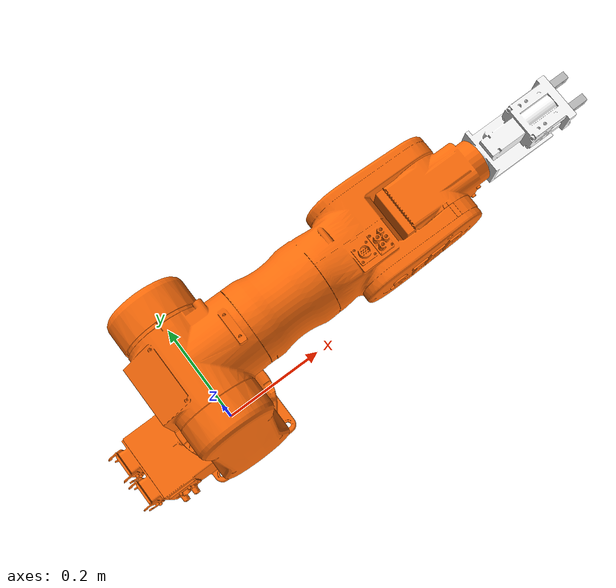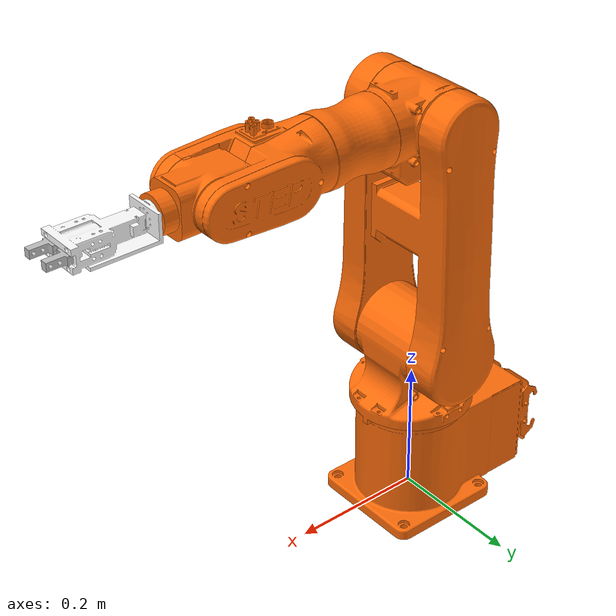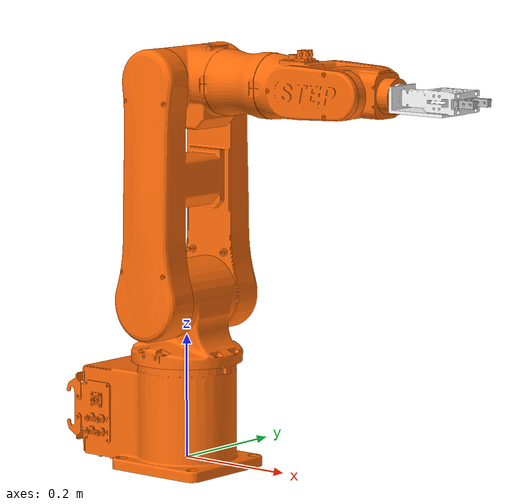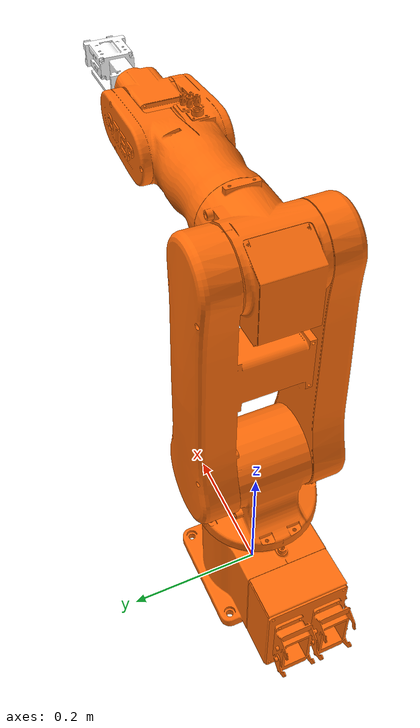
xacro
<robot
  name="sd700e_grip" xmlns:xacro="http://ros.org/wiki/xacro">

  <link name="base_footprint"/>
  <joint name="base_footprint_to_base" type="fixed">
    <axis rpy="0 0 0" xyz="0 0 0"/>
    <parent link="base_footprint"/>
    <child link="base_link"/>
    <origin rpy="0 0 0" xyz="0 0 0"/>
  </joint>

  <link
    name="base_link">
    <inertial>
      <origin
        xyz="-0.0194690222590367 0.0669003838868867 0.00026918811932978"
        rpy="0 0 0" />
      <mass
        value="0.001" />
      <inertia
        ixx="10"
        ixy="0"
        ixz="0"
        iyy="10"
        iyz="0"
        izz="10" />
    </inertial>
    <visual>
      <origin
        xyz="0 0 0"
        rpy="0 0 0" />
      <geometry>
        <mesh
          filename="package://sd700e_grip/meshes/base_link.STL" />
      </geometry>
      <material
        name="">
        <color
          rgba="1.0 0.42353 0.03921 1.0" />
      </material>
    </visual>
    <collision>
      <origin
        xyz="0 0 0"
        rpy="0 0 0" />
      <geometry>
        <mesh
          filename="package://sd700e_grip/meshes/base_link.STL" />
      </geometry>
    </collision>
  </link>
  <link
    name="Link1">
    <inertial>
      <origin
        xyz="6.24979525564542E-05 -0.0250389972697368 -3.54756695346475E-05"
        rpy="0 0 0" />
      <mass
        value="0.00001" />
      <inertia
        ixx="10"
        ixy="0"
        ixz="0"
        iyy="10"
        iyz="0"
        izz="10" />
    </inertial>
    <visual>
      <origin
        xyz="0 0 0"
        rpy="0 0 0" />
      <geometry>
        <mesh
          filename="package://sd700e_grip/meshes/Link1.STL" />
      </geometry>
      <material
        name="">
        <color
          rgba="1.0 0.42353 0.03921 1.0" />
      </material>
    </visual>
    <collision>
      <origin
        xyz="0 0 0"
        rpy="0 0 0" />
      <geometry>
        <mesh
          filename="package://sd700e_grip/meshes/Link1.STL" />
      </geometry>
    </collision>
  </link>
  <joint
    name="Joint1"
    type="revolute">
    <origin
      xyz="0 0 0.263"
      rpy="1.5708 0 0" />
    <parent
      link="base_link" />
    <child
      link="Link1" />
    <axis
      xyz="0 1 0" />
    <limit
      lower="-2.967"
      upper="2.967"
      effort="100"
      velocity="1" />
  </joint>
  <link
    name="Link2">
    <inertial>
      <origin
        xyz="3.89335646288233E-06 0.14379865823793 -0.0506443388040001"
        rpy="0 0 0" />
      <mass
        value="0.00001" />
      <inertia
        ixx="10"
        ixy="0"
        ixz="0"
        iyy="10"
        iyz="0"
        izz="10" />
    </inertial>
    <visual>
      <origin
        xyz="0 0 0"
        rpy="0 0 0" />
      <geometry>
        <mesh
          filename="package://sd700e_grip/meshes/Link2.STL" />
      </geometry>
      <material
        name="">
        <color
          rgba="1.0 0.42353 0.03921 1.0" />
      </material>
    </visual>
    <collision>
      <origin
        xyz="0 0 0"
        rpy="0 0 0" />
      <geometry>
        <mesh
          filename="package://sd700e_grip/meshes/Link2.STL" />
      </geometry>
    </collision>
  </link>
  <joint
    name="Joint2"
    type="revolute">
    <origin
      xyz="0 0 0"
      rpy="0 0 0" />
    <parent
      link="Link1" />
    <child
      link="Link2" />
    <axis
      xyz="0 0 1" />
    <limit
      lower="-1.9199"
      upper="1.9199"
      effort="100"
      velocity="1" />
  </joint>
  <link
    name="Link3">
    <inertial>
      <origin
        xyz="0.013415824980232 -0.0105511175519905 0.00078367779449206"
        rpy="0 0 0" />
      <mass
        value="0.00001" />
      <inertia
        ixx="10"
        ixy="0"
        ixz="0"
        iyy="10"
        iyz="0"
        izz="10" />
    </inertial>
    <visual>
      <origin
        xyz="0 0 0"
        rpy="0 0 0" />
      <geometry>
        <mesh
          filename="package://sd700e_grip/meshes/Link3.STL" />
      </geometry>
      <material
        name="">
        <color
          rgba="1.0 0.42353 0.03921 1.0" />
      </material>
    </visual>
    <collision>
      <origin
        xyz="0 0 0"
        rpy="0 0 0" />
      <geometry>
        <mesh
          filename="package://sd700e_grip/meshes/Link3.STL" />
      </geometry>
    </collision>
  </link>
  <joint
    name="Joint3"
    type="revolute">
    <origin
      xyz="0 0.35 0"
      rpy="0 0 0" />
    <parent
      link="Link2" />
    <child
      link="Link3" />
    <axis
      xyz="0 0 1" />
    <limit
      lower="-0.6981"
      upper="3.8397"
      effort="100"
      velocity="1" />
  </joint>
  <link
    name="Link4">
    <inertial>
      <origin
        xyz="0.124377414524302 0.000531054308674062 0.00764519285380822"
        rpy="0 0 0" />
      <mass
        value="0.00001" />
      <inertia
        ixx="10"
        ixy="0"
        ixz="0"
        iyy="10"
        iyz="0"
        izz="10" />
    </inertial>
    <visual>
      <origin
        xyz="0 0 0"
        rpy="0 0 0" />
      <geometry>
        <mesh
          filename="package://sd700e_grip/meshes/Link4.STL" />
      </geometry>
      <material
        name="">
        <color
          rgba="1.0 0.42353 0.03921 1.0" />
      </material>
    </visual>
    <collision>
      <origin
        xyz="0 0 0"
        rpy="0 0 0" />
      <geometry>
        <mesh
          filename="package://sd700e_grip/meshes/Link4.STL" />
      </geometry>
    </collision>
  </link>
  <joint
    name="Joint4"
    type="revolute">
    <origin
      xyz="0.0805 0 0"
      rpy="0 0 0" />
    <parent
      link="Link3" />
    <child
      link="Link4" />
    <axis
      xyz="1 0 0" />
    <limit
      lower="-3.1416"
      upper="3.1416"
      effort="100"
      velocity="1" />
  </joint>
  <link
    name="Link5">
    <inertial>
      <origin
        xyz="0.0171365648416463 5.00386109847373E-06 0.00579159804548859"
        rpy="0 0 0" />
      <mass
        value="0.00001" />
      <inertia
        ixx="10"
        ixy="0"
        ixz="0"
        iyy="10"
        iyz="0"
        izz="10" />
    </inertial>
    <visual>
      <origin
        xyz="0 0 0"
        rpy="0 0 0" />
      <geometry>
        <mesh
          filename="package://sd700e_grip/meshes/Link5.STL" />
      </geometry>
      <material
        name="">
        <color
          rgba="1.0 0.42353 0.03921 1.0" />
      </material>
    </visual>
    <collision>
      <origin
        xyz="0 0 0"
        rpy="0 0 0" />
      <geometry>
        <mesh
          filename="package://sd700e_grip/meshes/Link5.STL" />
      </geometry>
    </collision>
  </link>
  <joint
    name="Joint5"
    type="revolute">
    <origin
      xyz="0.2695 0 0"
      rpy="0 0 0" />
    <parent
      link="Link4" />
    <child
      link="Link5" />
    <axis
      xyz="0 0 1" />
    <limit
      lower="-2.1817"
      upper="2.1817"
      effort="100"
      velocity="1" />
  </joint>
  <link
    name="Link6">
    <inertial>
      <origin
        xyz="0.0688522601103922 -0.00341730826575071 -8.58713696627559E-05"
        rpy="0 0 0" />
      <mass
        value="0.00001" />
      <inertia
        ixx="10"
        ixy="0"
        ixz="0"
        iyy="10"
        iyz="0"
        izz="10" />
    </inertial>
    <visual>
      <origin
        xyz="0 0 0"
        rpy="0 0 0" />
      <geometry>
        <mesh
          filename="package://sd700e_grip/meshes/Link6.STL" />
      </geometry>
      <material
        name="">
        <color
          rgba="1 1 1 1" />
      </material>
    </visual>
    <collision>
      <origin
        xyz="0 0 0"
        rpy="0 0 0" />
      <geometry>
        <mesh
          filename="package://sd700e_grip/meshes/Link6.STL" />
      </geometry>
    </collision>
  </link>
  <joint
    name="Joint6"
    type="revolute">
    <origin
      xyz="0.0745 0 0"
      rpy="0 0 0" />
    <parent
      link="Link5" />
    <child
      link="Link6" />
    <axis
      xyz="1 0 0" />
    <limit
      lower="-3.1416"
      upper="3.1416"
      effort="100"
      velocity="1" />
  </joint>
  <link
    name="left_grip">
    <inertial>
      <origin
        xyz="0.0141086137554788 0 0.0169130859525959"
        rpy="0 0 0" />
      <mass
        value="0.00001" />
      <inertia
        ixx="10"
        ixy="0"
        ixz="0"
        iyy="10"
        iyz="0"
        izz="10" />
    </inertial>
    <visual>
      <origin
        xyz="0 0 0"
        rpy="0 0 0" />
      <geometry>
        <mesh
          filename="package://sd700e_grip/meshes/left_grip.STL" />
      </geometry>
      <material
        name="">
        <color
          rgba="0.749019607843137 0.749019607843137 0.749019607843137 1" />
      </material>
    </visual>
    <collision>
      <origin
        xyz="0 0 0"
        rpy="0 0 0" />
      <geometry>
        <mesh
          filename="package://sd700e_grip/meshes/left_grip.STL" />
      </geometry>
    </collision>
  </link>
  <joint
    name="leftjoint"
    type="prismatic">
    <origin
      xyz="0.1228 0 0"
      rpy="0 0 0" />
    <parent
      link="Link6" />
    <child
      link="left_grip" />
    <axis
      xyz="0 0 1" />
    <limit
      lower="-0.0035"
      upper="0.0035"
      effort="100"
      velocity="1" />
  </joint>
  <link
    name="right_grip">
    <inertial>
      <origin
        xyz="0.0141086137554787 7.7715611723761E-16 -0.016913085952596"
        rpy="0 0 0" />
      <mass
        value="0.00001" />
      <inertia
        ixx="10"
        ixy="0"
        ixz="0"
        iyy="10"
        iyz="0"
        izz="10" />
    </inertial>
    <visual>
      <origin
        xyz="0 0 0"
        rpy="0 0 0" />
      <geometry>
        <mesh
          filename="package://sd700e_grip/meshes/right_grip.STL" />
      </geometry>
      <material
        name="">
        <color
          rgba="0.749019607843137 0.749019607843137 0.749019607843137 1" />
      </material>
    </visual>
    <collision>
      <origin
        xyz="0 0 0"
        rpy="0 0 0" />
      <geometry>
        <mesh
          filename="package://sd700e_grip/meshes/right_grip.STL" />
      </geometry>
    </collision>
  </link>
  <joint
    name="rightjoint"
    type="prismatic">
    <origin
      xyz="0.1228 0 0"
      rpy="0 0 0" />
    <parent
      link="Link6" />
    <child
      link="right_grip" />
    <axis
      xyz="0 0 1" />
    <limit
      lower="-0.0035"
      upper="0.0035"
      effort="100"
      velocity="1" />
    <mimic joint="leftjoint" multiplier="-1" />
  </joint>

  <!-- Transmissions for ROS Control -->
  <xacro:macro name="transmission_block" params="joint_name">
    <transmission name="tran1">
      <type>transmission_interface/SimpleTransmission</type>
      <joint name="${joint_name}">
        <hardwareInterface>hardware_interface/PositionJointInterface</hardwareInterface>
      </joint>
      <actuator name="motor1">
        <hardwareInterface>hardware_interface/PositionJointInterface</hardwareInterface>
        <mechanicalReduction>1</mechanicalReduction>
      </actuator>
    </transmission>
  </xacro:macro>

  <xacro:transmission_block joint_name="Joint1"/>
  <xacro:transmission_block joint_name="Joint2"/>
  <xacro:transmission_block joint_name="Joint3"/>
  <xacro:transmission_block joint_name="Joint4"/>
  <xacro:transmission_block joint_name="Joint5"/>
  <xacro:transmission_block joint_name="Joint6"/>

  <!-- ros_control plugin -->
  <gazebo>
    <plugin name="gazebo_ros_control" filename="libgazebo_ros_control.so">
      <robotNamespace>/sd700e_grip</robotNamespace>
      <robotSimType>gazebo_ros_control/DefaultRobotHWSim</robotSimType>
      <legacyModeNS>true</legacyModeNS>
    </plugin>
  </gazebo>

</robot>
